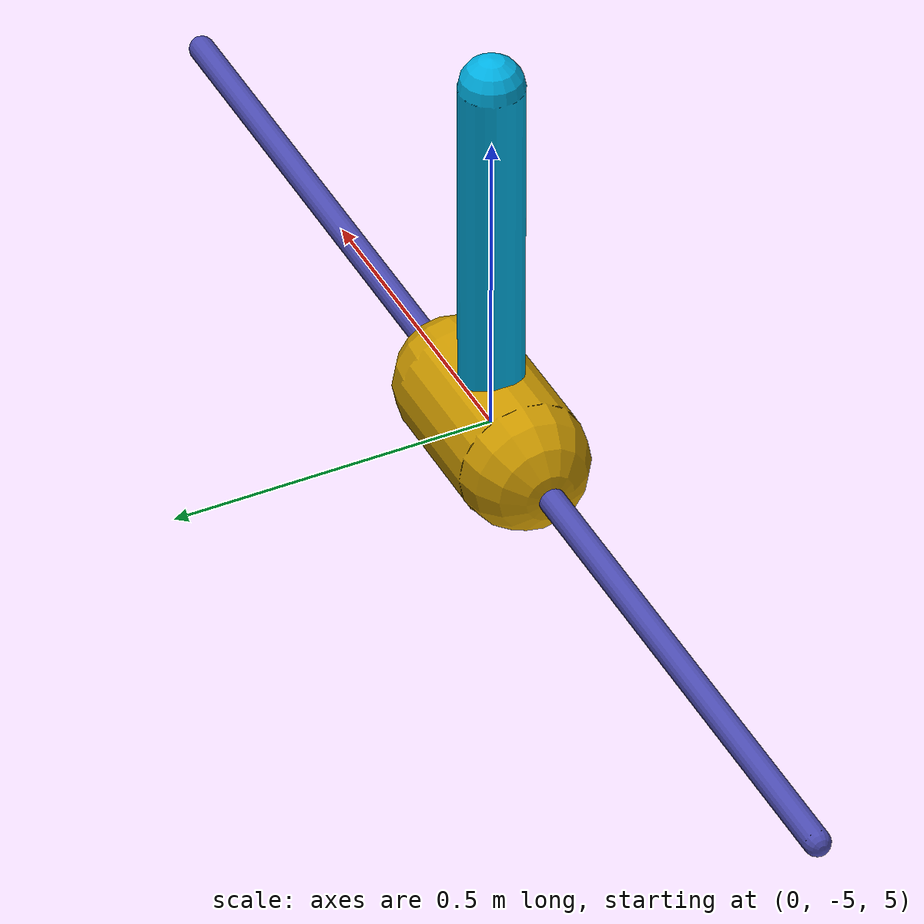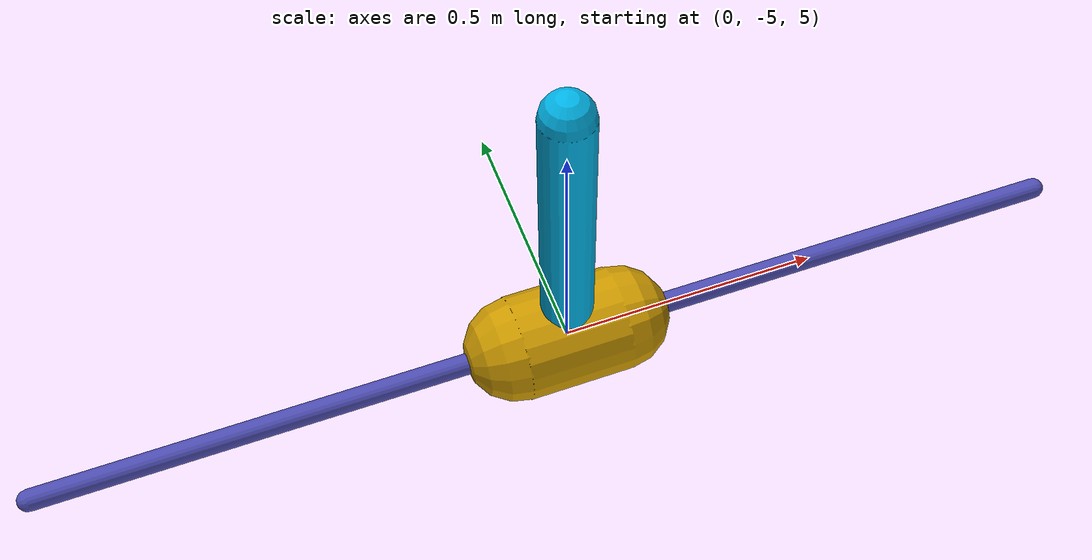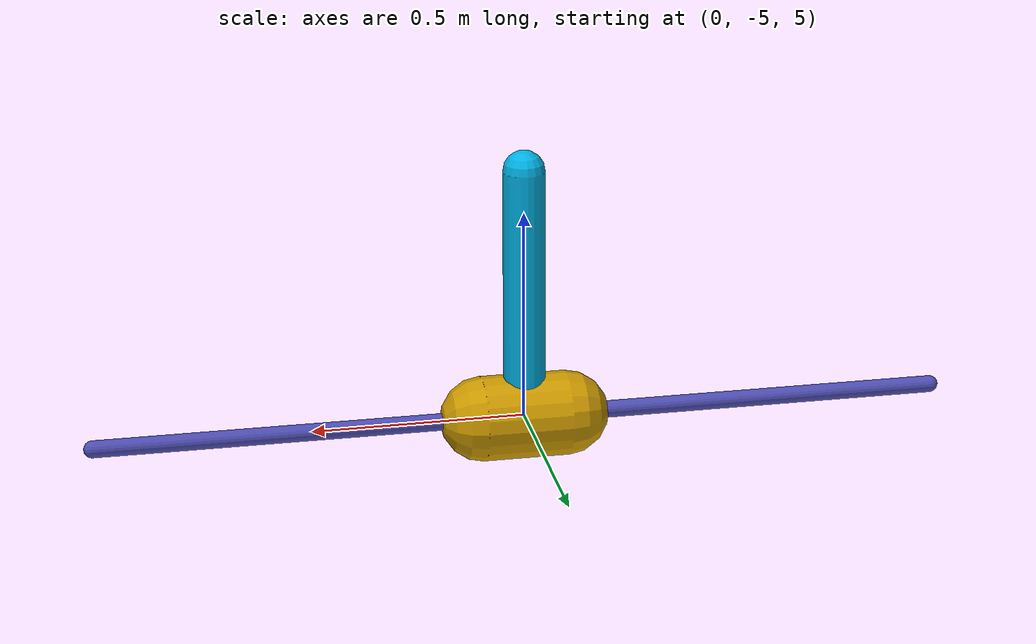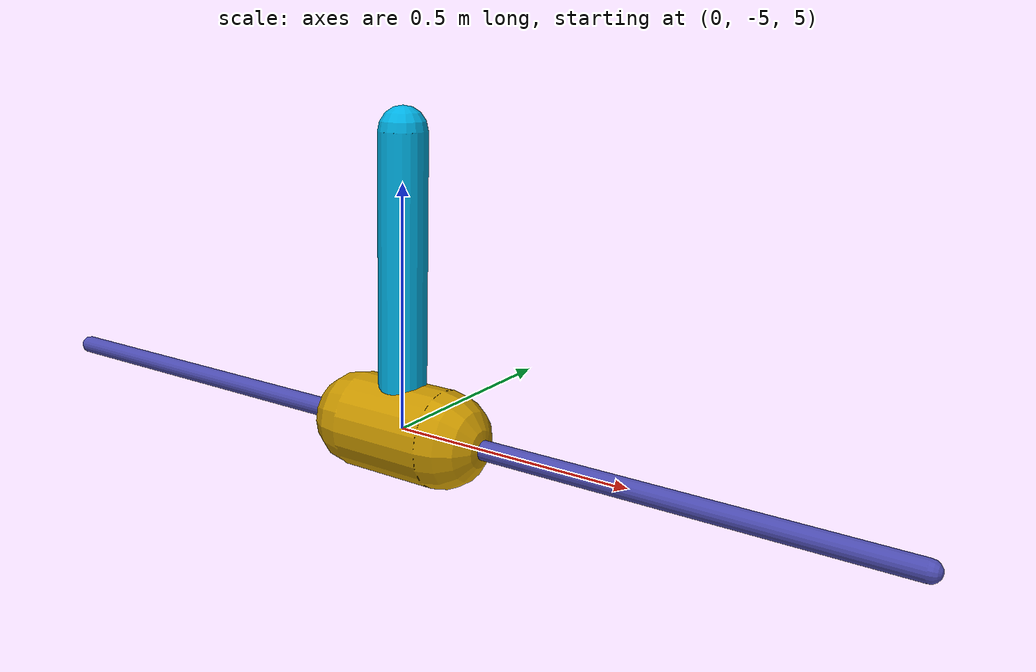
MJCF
<mujoco model="inverted pendulum">
	<compiler inertiafromgeom="true"/>
    <option gravity="0 0 -9.81" integrator="RK4" timestep="0.02"/>
	<size nstack="3000"/>

	<default>
		<joint armature="0" damping="1" limited="true"/>
		<geom contype="0" friction="1 0.1 0.1" rgba="0.8 0.6 0 1"/>
		<tendon/>
		<motor ctrlrange="-3 3"/>
	</default>

    <asset>
        <texture name="skybox" type="skybox" file="/home/local/ASUAD/gmclark1/Research/git/Bayesian_NN_Filter/pendulum_examples3d/wall2.png"/>
    </asset>

	<worldbody>
		<geom name="rail" pos="0 -5 5" quat="0.707 0 0.707 0" rgba="0.3 0.3 0.7 1" size="0.02 1" type="capsule"/>
		<body name="cart" pos="0 -5 5">
			<joint axis="1 0 0" limited="true" name="slider" pos="0 0 0" range="-1 1" type="slide"/>
			<geom name="cart" pos="0 0 0" quat="0.707 0 0.707 0" size="0.1 0.1" type="capsule"/>
			<body name="pole" pos="0 0 0">
				<joint axis="0 1 0" name="hinge" pos="0 0 0" range="-90 90" type="hinge"/>
				<geom fromto="0 0 0 0.001 0 0.6" name="cpole" rgba="0 0.7 0.9 1" size="0.049 0.3" type="capsule"/>
			</body>
		</body>
	</worldbody>
	<actuator>
		<motor gear="100" joint="slider" name="slide"/>
	</actuator>
</mujoco>
